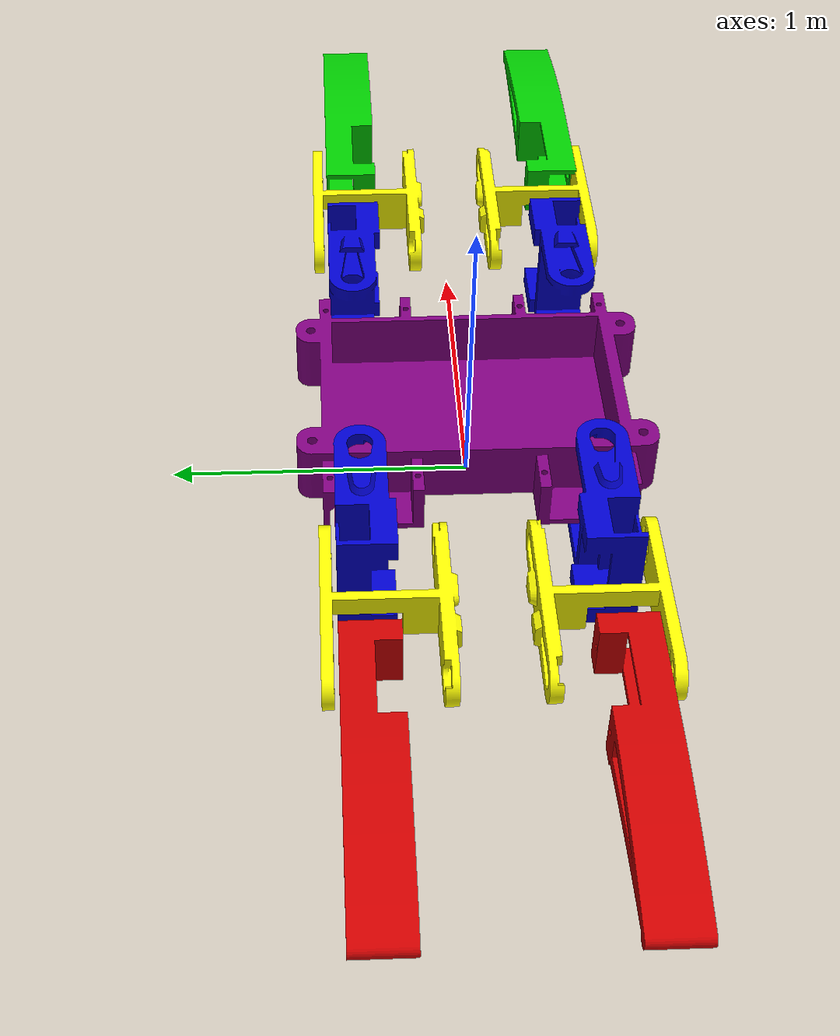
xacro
<?xml version="1.0"?>

<robot xmlns:xacro="http://www.ros.org/wiki/xacro" name="spiderbot">
    <xacro:arg name="port" default="" />
    <xacro:arg name="is_ignition" default="false" />
    <xacro:arg name="is_sim" default="true" />

    <xacro:include filename="$(find spiderbot_description)/urdf/spiderbot_colors.xacro" />
    <xacro:include filename="$(find spiderbot_description)/urdf/spiderbot_gazebo.xacro" />
    <xacro:include filename="$(find spiderbot_description)/urdf/spiderbot_ros2_control.xacro" />

    <xacro:property name="PI" value="3.14159" />
    <xacro:property name="effort" value="30.0" />
    <xacro:property name="velocity" value="10.0" />

    <xacro:macro name="default_inertial" params="mass">
        <inertial>
            <mass value="${mass}" />
            <inertia ixx="1.0" ixy="0.0" ixz="0.0"
                iyy="1.0" iyz="0.0"
                izz="1.0" />
        </inertial>
    </xacro:macro>

    <link name="base_footprint" />

    <link name="robot_body">
        <xacro:default_inertial mass="0.110" />
        <visual>
            <origin rpy="0 0 0" xyz="0 0 0.0" />
            <geometry>
                <mesh filename="package://spiderbot_description/meshes/m_body.stl"
                    scale="0.01 0.01 0.01" />
            </geometry>
            <material name="purple" />
        </visual>
        <collision>
            <origin rpy="0 0 0" xyz="0 0 0.0" />
            <geometry>
                <mesh filename="package://spiderbot_description/meshes/m_body.stl"
                    scale="0.01 0.01 0.01" />
            </geometry>
        </collision>
    </link>

    <joint name="virtual_joint" type="fixed">
        <parent link="base_footprint" />
        <child link="robot_body" />
        <origin rpy="0 0 0" xyz="0 0 0.3" />
    </joint>

    <xacro:include filename="$(find spiderbot_description)/urdf/_front_left_leg.xacro" />
    <xacro:include filename="$(find spiderbot_description)/urdf/_front_right_leg.xacro" />
    <xacro:include filename="$(find spiderbot_description)/urdf/_back_left_leg.xacro" />
    <xacro:include filename="$(find spiderbot_description)/urdf/_back_right_leg.xacro" />

</robot>

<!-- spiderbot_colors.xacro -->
<robot xmlns:xacro="http://www.ros.org/wiki/xacro">
  <material name="black">
    <color rgba="0.0 0.0 0.0 1.0"/>
  </material>

  <material name="blue">
    <color rgba="0.0 0.0 0.8 1.0"/>
  </material>

  <material name="green">
    <color rgba="0.0 0.8 0.0 1.0"/>
  </material>

  <material name="grey">
    <color rgba="0.2 0.2 0.2 1.0"/>
  </material>

  <material name="orange">
    <color rgba="${255/255} ${108/255} ${10/255} 1.0"/>
  </material>

  <material name="brown">
    <color rgba="${222/255} ${207/255} ${195/255} 1.0"/>
  </material>

  <material name="red">
    <color rgba="0.8 0.0 0.0 1.0"/>
  </material>

  <material name="white">
    <color rgba="1.0 1.0 1.0 1.0"/>
  </material>

  <material name="yellow">
    <color rgba="1.0 1.0 0.0 1.0"/>
  </material>

  <material name="pink">
    <color rgba="1.0 0.75 0.79 1.0"/>
  </material>

  <material name="purple">
    <color rgba="0.5 0.0 0.5 1.0"/>
  </material>

</robot>

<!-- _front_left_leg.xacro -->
<robot xmlns:xacro="http://www.ros.org/wiki/xacro">

    <link name="fl_hip">
        <xacro:default_inertial mass="0.02" />
        <visual>
            <origin rpy="${PI} 0 ${PI}" xyz="-0.05 0 0" />
            <geometry>
                <mesh filename="package://spiderbot_description/meshes/m_coxa_flbr.stl"
                    scale="0.01 0.01 0.01" />
            </geometry>
            <material name="blue" />
        </visual>
        <collision>
            <origin rpy="${PI} 0 ${PI}" xyz="-0.05 0 0" />
            <geometry>
                <mesh filename="package://spiderbot_description/meshes/m_coxa_flbr.stl"
                    scale="0.01 0.01 0.01" />
            </geometry>
        </collision>
    </link>

    <joint name="joint_h_fl" type="revolute">
        <parent link="robot_body" />
        <child link="fl_hip" />
        <origin rpy="${PI} 0 0" xyz="-0.4 0.37 0.06" />
        <axis xyz="0 0 1"/>
        <limit lower="-${PI/4}" upper="${PI/2}" effort="${effort}" velocity="${velocity}" />
    </joint>

    <link name="fl_femur">
        <xacro:default_inertial mass="0.02" />
        <visual>
            <origin rpy="${PI} 0 ${PI}" xyz="-0.08 -0.23 0.0" />
            <geometry>
                <mesh filename="package://spiderbot_description/meshes/m_femur_flbr.stl"
                    scale="0.01 0.01 0.01" />
            </geometry>
            <material name="yellow" />
        </visual>
        <collision>
            <origin rpy="${PI} 0 ${PI}" xyz="-0.08 -0.23 0.0" />
            <geometry>
                <mesh filename="package://spiderbot_description/meshes/m_femur_flbr.stl"
                    scale="0.01 0.01 0.01" />
            </geometry>
        </collision>
    </link>

    <joint name="joint_hip_femur_fl" type="revolute">
        <parent link="fl_hip" />
        <child link="fl_femur" />
        <origin rpy="0 0 ${-PI/2}" xyz="-0.33 0.0 -0.03" />
        <axis xyz="1 0 0"/>
        <limit lower="-${PI/4}" upper="${PI/2}" effort="${effort}" velocity="${velocity}" />
    </joint>

    <link name="fl_tibia">
        <xacro:default_inertial mass="0.02" />
        <visual>
            <origin rpy="${PI} 0 0" xyz="-0.01 -0.26 0.0" />
            <geometry>
                <mesh filename="package://spiderbot_description/meshes/m_tibia_flbr.stl"
                    scale="0.01 0.01 0.01" />
            </geometry>
            <material name="red" />
        </visual>
        <collision>
            <origin rpy="${PI} 0 0" xyz="-0.01 -0.26 0.0" />
            <geometry>
                <mesh filename="package://spiderbot_description/meshes/m_tibia_flbr.stl"
                    scale="0.01 0.01 0.01" />
            </geometry>
        </collision>
    </link>

    <joint name="joint_femur_tibia_fl" type="revolute">
        <parent link="fl_femur" />
        <child link="fl_tibia" />
        <origin rpy="0 0 0" xyz="0.0 -0.46 0" />
        <axis xyz="1 0 0"/>
        <limit lower="-${4*PI/5}" upper="0" effort="${effort}" velocity="${velocity}" />
    </joint>
</robot>

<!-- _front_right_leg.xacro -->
<robot xmlns:xacro="http://www.ros.org/wiki/xacro">
    <link name="fr_hip">
        <xacro:default_inertial mass="0.02" />
        <visual>
            <origin rpy="0 0 ${PI}" xyz="0.05 0 0" />
            <geometry>
                <mesh filename="package://spiderbot_description/meshes/m_coxa_frbl.stl"
                    scale="0.01 0.01 0.01" />
            </geometry>
            <material name="blue" />
        </visual>
        <collision>
            <origin rpy="0 0 ${PI}" xyz="0.05 0 0" />
            <geometry>
                <mesh filename="package://spiderbot_description/meshes/m_coxa_frbl.stl"
                    scale="0.01 0.01 0.01" />
            </geometry>
        </collision>
    </link>

    <joint name="joint_h_fr" type="revolute">
        <parent link="robot_body" />
        <child link="fr_hip" />
        <origin rpy="0 0 0" xyz="0.4 0.37 0.06" />
        <axis xyz="0 0 1"/>
        <limit lower="-${PI/4}" upper="${PI/2}" effort="${effort}" velocity="${velocity}" />
    </joint>

    <link name="fr_femur">
        <xacro:default_inertial mass="0.02" />
        <visual>
            <origin rpy="${PI} ${PI} 0" xyz="0.08 0.23 0.0" />
            <geometry>
                <mesh filename="package://spiderbot_description/meshes/m_femur_frbl.stl"
                    scale="0.01 0.01 0.01" />
            </geometry>
            <material name="yellow" />
        </visual>
        <collision>
            <origin rpy="${PI} ${PI} 0" xyz="0.08 0.23 0.0" />
            <geometry>
                <mesh filename="package://spiderbot_description/meshes/m_femur_frbl.stl"
                    scale="0.01 0.01 0.01" />
            </geometry>
        </collision>
    </link>

    <joint name="joint_hip_femur_fr" type="revolute">
        <parent link="fr_hip" />
        <child link="fr_femur" />
        <origin rpy="0 0 ${-PI/2}" xyz="0.33 0.0 0.03" />
        <axis xyz="1 0 0"/>
        <limit lower="-${PI/4}" upper="${PI/2}" effort="${effort}" velocity="${velocity}" />
    </joint>

    <link name="fr_tibia">
        <xacro:default_inertial mass="0.02" />
        <visual>
            <origin rpy="${PI} ${PI} ${PI}" xyz="0.01 0.26 0.0" />
            <geometry>
                <mesh filename="package://spiderbot_description/meshes/m_tibia_frbl.stl"
                    scale="0.01 0.01 0.01" />
            </geometry>
            <material name="green" />
        </visual>
        <collision>
            <origin rpy="${PI} ${PI} ${PI}" xyz="0.01 0.26 0.0" />
            <geometry>
                <mesh filename="package://spiderbot_description/meshes/m_tibia_frbl.stl"
                    scale="0.01 0.01 0.01" />
            </geometry>
        </collision>
    </link>

    <joint name="joint_femur_tibia_fr" type="revolute">
        <parent link="fr_femur" />
        <child link="fr_tibia" />
        <origin rpy="0 0 0" xyz="0.0 0.46 0" />
        <axis xyz="1 0 0"/>
        <limit lower="-${4*PI/5}" upper="0" effort="${effort}" velocity="${velocity}" />
    </joint>
</robot>

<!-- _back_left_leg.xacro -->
<robot xmlns:xacro="http://www.ros.org/wiki/xacro">
    <link name="bl_hip">
        <xacro:default_inertial mass="0.02" />
        <visual>
            <origin rpy="${PI} 0 0" xyz="-0.05 0 0" />
            <geometry>
                <mesh filename="package://spiderbot_description/meshes/m_coxa_frbl.stl"
                    scale="0.01 0.01 0.01" />
            </geometry>
            <material name="blue" />
        </visual>
        <collision>
            <origin rpy="${PI} 0 0" xyz="-0.05 0 0" />
            <geometry>
                <mesh filename="package://spiderbot_description/meshes/m_coxa_frbl.stl"
                    scale="0.01 0.01 0.01" />
            </geometry>
        </collision>
    </link>

    <joint name="joint_h_bl" type="revolute">
        <parent link="robot_body" />
        <child link="bl_hip" />
        <origin rpy="${PI} 0 0" xyz="-0.4 -0.37 0.06" />
        <axis xyz="0 0 1"/>
        <limit lower="-${PI/2}" upper="${PI/4}" effort="${effort}" velocity="${velocity}" />
    </joint>

    <link name="bl_femur">
        <xacro:default_inertial mass="0.02" />
        <visual>
            <origin rpy="${PI} 0 ${PI}" xyz="0.08 -0.23 0.0" />
            <geometry>
                <mesh filename="package://spiderbot_description/meshes/m_femur_frbl.stl"
                    scale="0.01 0.01 0.01" />
            </geometry>
            <material name="yellow" />
        </visual>
        <collision>
            <origin rpy="${PI} 0 ${PI}" xyz="0.08 -0.23 0.0" />
            <geometry>
                <mesh filename="package://spiderbot_description/meshes/m_femur_frbl.stl"
                    scale="0.01 0.01 0.01" />
            </geometry>
        </collision>
    </link>

    <joint name="joint_hip_femur_bl" type="revolute">
        <parent link="bl_hip" />
        <child link="bl_femur" />
        <origin rpy="0 0 ${-PI/2}" xyz="-0.33 0.0 -0.03" />
        <axis xyz="1 0 0"/>
        <limit lower="-${PI/4}" upper="${PI/2}" effort="${effort}" velocity="${velocity}" />
    </joint>

    <link name="bl_tibia">
        <xacro:default_inertial mass="0.02" />
        <visual>
            <origin rpy="${PI} 0 0" xyz="0.01 -0.26 0.0" />
            <geometry>
                <mesh filename="package://spiderbot_description/meshes/m_tibia_frbl.stl"
                    scale="0.01 0.01 0.01" />
            </geometry>
            <material name="red" />
        </visual>
        <collision>
            <origin rpy="${PI} 0 0" xyz="0.01 -0.26 0.0" />
            <geometry>
                <mesh filename="package://spiderbot_description/meshes/m_tibia_frbl.stl"
                    scale="0.01 0.01 0.01" />
            </geometry>
        </collision>
    </link>

    <joint name="joint_femur_tibia_bl" type="revolute">
        <parent link="bl_femur" />
        <child link="bl_tibia" />
        <origin rpy="0 0 0" xyz="0.0 -0.46 0" />
        <axis xyz="1 0 0"/>
        <limit lower="-${4*PI/5}" upper="0" effort="${effort}" velocity="${velocity}" />
    </joint>
</robot>

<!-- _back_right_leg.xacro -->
<robot xmlns:xacro="http://www.ros.org/wiki/xacro">
    <link name="br_hip">
        <xacro:default_inertial mass="0.02" />
        <visual>
            <origin rpy="0 0 ${PI}" xyz="-0.05 0 0" />
            <geometry>
                <mesh filename="package://spiderbot_description/meshes/m_coxa_flbr.stl"
                    scale="0.01 0.01 0.01" />
            </geometry>
            <material name="blue" />
        </visual>
        <collision>
            <origin rpy="0 0 ${PI}" xyz="-0.05 0 0" />
            <geometry>
                <mesh filename="package://spiderbot_description/meshes/m_coxa_flbr.stl"
                    scale="0.01 0.01 0.01" />
            </geometry>
        </collision>
    </link>

    <joint name="joint_h_br" type="revolute">
        <parent link="robot_body" />
        <child link="br_hip" />
        <origin rpy="0 0 ${PI}" xyz="0.4 -0.37 0.06" />
        <axis xyz="0 0 1"/>
        <limit lower="-${PI/2}" upper="${PI/4}" effort="${effort}" velocity="${velocity}" />
    </joint>

    <link name="br_femur">
        <xacro:default_inertial mass="0.02" />
        <visual>
            <origin rpy="0 0 ${PI}" xyz="-0.08 0.23 0.0" />
            <geometry>
                <mesh filename="package://spiderbot_description/meshes/m_femur_flbr.stl"
                    scale="0.01 0.01 0.01" />
            </geometry>
            <material name="yellow" />
        </visual>
        <collision>
            <origin rpy="0 0 ${PI}" xyz="-0.08 0.23 0.0" />
            <geometry>
                <mesh filename="package://spiderbot_description/meshes/m_femur_flbr.stl"
                    scale="0.01 0.01 0.01" />
            </geometry>
        </collision>
    </link>

    <joint name="joint_hip_femur_br" type="revolute">
        <parent link="br_hip" />
        <child link="br_femur" />
        <origin rpy="0 0 ${PI/2}" xyz="-0.33 0.0 0.03" />
        <axis xyz="1 0 0"/>
        <limit lower="-${PI/4}" upper="${PI/2}" effort="${effort}" velocity="${velocity}" />
    </joint>

    <link name="br_tibia">
        <xacro:default_inertial mass="0.02" />
        <visual>
            <origin rpy="${PI} ${PI} ${PI}" xyz="0.01 0.26 0.0" />
            <geometry>
                <mesh filename="package://spiderbot_description/meshes/m_tibia_flbr.stl"
                    scale="0.01 0.01 0.01" />
            </geometry>
            <material name="green" />
        </visual>
        <collision>
            <origin rpy="${PI} ${PI} ${PI}" xyz="0.01 0.26 0.0" />
            <geometry>
                <mesh filename="package://spiderbot_description/meshes/m_tibia_flbr.stl"
                    scale="0.01 0.01 0.01" />
            </geometry>
        </collision>
    </link>

    <joint name="joint_femur_tibia_br" type="revolute">
        <parent link="br_femur" />
        <child link="br_tibia" />
        <origin rpy="0 0 0" xyz="0.0 0.46 0" />
        <axis xyz="1 0 0"/>
        <limit lower="-${4*PI/5}" upper="0" effort="${effort}" velocity="${velocity}" />
    </joint>
</robot>
